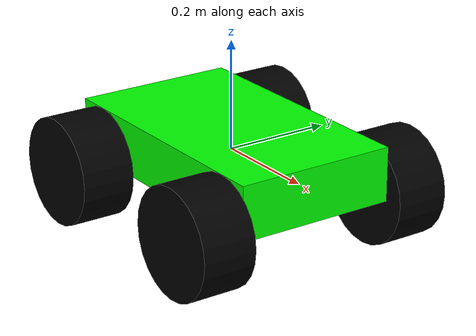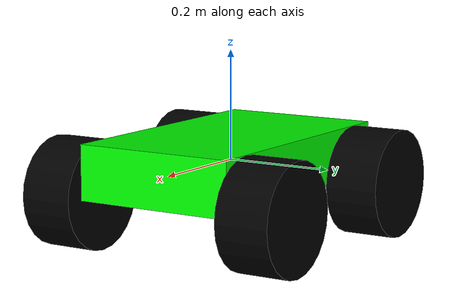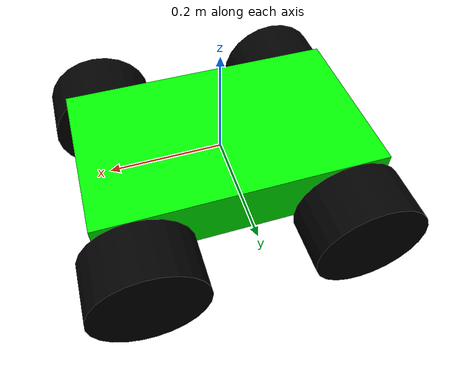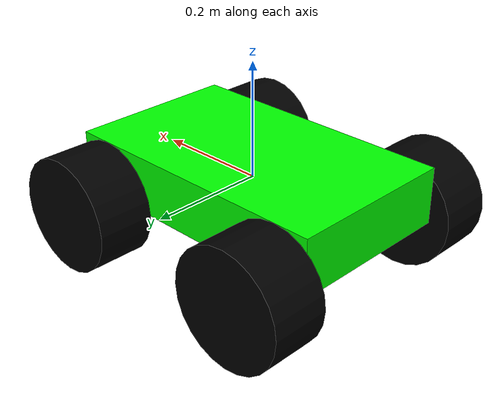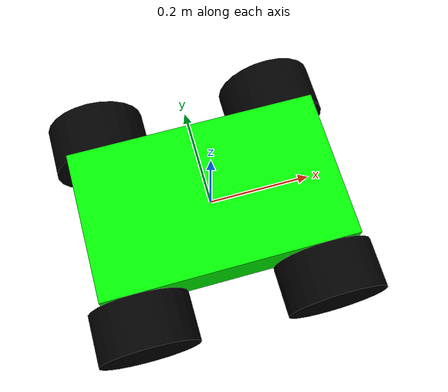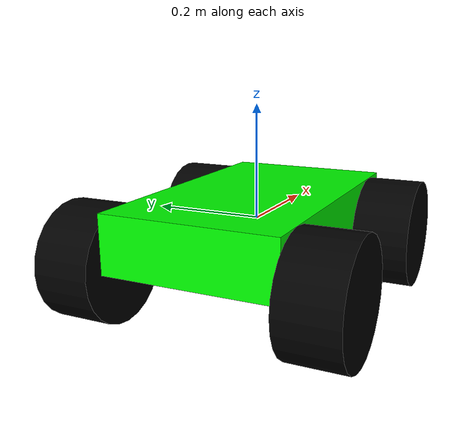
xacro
<?xml version="1.0" ?>
<robot xmlns:xacro="http://www.ros.org/wiki/xacro">

<xacro:include filename="$(find agri_bot)/urdf/materials.xacro" />
<xacro:include filename="$(find agri_bot)/urdf/properties.xacro" />

<xacro:property name="chassis_length"  value = "0.5"/>
<xacro:property name="chassis_width"   value = "0.3"/>
<xacro:property name="chassis_height"  value = "0.1"/>
<xacro:property name="chassis_mass"    value = "0.1"/>
<xacro:property name="wheel_radius"    value = "0.1"/>
<xacro:property name="wheel_thickness" value = "0.1"/>
<xacro:property name="wheel_mass"      value = "0.1"/>
<xacro:property name="wheel_offset_y"  value = "0.2"/>

<link name="base_link"/>

<joint name="base_footprint_joint" type="fixed">
    <parent link="base_link"/>
    <child link="base_footprint"/>
    <origin xyz="0 0 0" rpy="0 0 0"/>
</joint>

<link name="base_footprint">
</link>

<link name="chassis_link">
    <visual>
        <geometry>
            <box size="0.5 0.3 0.1"/>
        </geometry>
        <material name="green"/>
    </visual>
    <collision>
        <geometry>
            <box size="0.5 0.3 0.1"/>
        </geometry>
        <material name="green"/>
    </collision>
    <xacro:inertial_box mass="${chassis_mass}" x="${chassis_length}" y="${chassis_width}" z="${chassis_height}">
      <origin xyz="${chassis_length/2} 0 ${chassis_height/2}" rpy="0 0 0"/>
    </xacro:inertial_box>
</link>

<gazebo reference="chassis_link">
    <material>Gazebo/Blue</material>
</gazebo>

<link name="front_right_wheel">
    <visual>
        <geometry>
            <cylinder radius="${wheel_radius}" length="${wheel_thickness}"/>
        </geometry>
        <material name="black"/>
    </visual>
    <collision>
        <geometry>
            <cylinder radius="${wheel_radius}" length="${wheel_thickness}"/>
        </geometry>
        <material name="black"/>
    </collision>
    <xacro:inertial_cylinder mass="${wheel_mass}" length="${wheel_thickness}" radius="${wheel_radius}">
        <origin xyz="0 0 0" rpy="0 0 0"/>
    </xacro:inertial_cylinder>
</link>

<gazebo reference="front_right_wheel">
    <material>Gazebo/Black</material>
</gazebo>

<link name="front_left_wheel">
    <visual>
        <geometry>
            <cylinder radius="${wheel_radius}" length="${wheel_thickness}"/>
        </geometry>
        <material name="black"/>
    </visual>
    <collision>
        <geometry>
            <cylinder radius="${wheel_radius}" length="${wheel_thickness}"/>
        </geometry>
        <material name="black"/>
    </collision>
    <xacro:inertial_cylinder mass="${wheel_mass}" length="${wheel_thickness}" radius="${wheel_radius}">
        <origin xyz="0 0 0" rpy="0 0 0"/>
    </xacro:inertial_cylinder>
</link>

<gazebo reference="front_left_wheel">
    <material>Gazebo/Black</material>
</gazebo>

<link name="rear_right_wheel">
    <visual>
        <geometry>
            <cylinder radius="${wheel_radius}" length="${wheel_thickness}"/>
        </geometry>
        <material name="black"/>
    </visual>
    <collision>
        <geometry>
            <cylinder radius="${wheel_radius}" length="${wheel_thickness}"/>
        </geometry>
        <material name="black"/>
    </collision>
    <xacro:inertial_cylinder mass="${wheel_mass}" length="${wheel_thickness}" radius="${wheel_radius}">
        <origin xyz="0 0 0" rpy="0 0 0"/>
    </xacro:inertial_cylinder>
</link>

<gazebo reference="rear_right_wheel">
    <material>Gazebo/Black</material>
</gazebo>

<link name="rear_left_wheel">
    <visual>
        <geometry>
            <cylinder radius="${wheel_radius}" length="${wheel_thickness}"/>
        </geometry>
        <material name="black"/>
    </visual>
    <collision>
        <geometry>
            <cylinder radius="${wheel_radius}" length="${wheel_thickness}"/>
        </geometry>
        <material name="black"/>
    </collision>
    <xacro:inertial_cylinder mass="${wheel_mass}" length="${wheel_thickness}" radius="${wheel_radius}">
        <origin xyz="0 0 0" rpy="0 0 0"/>
    </xacro:inertial_cylinder>
</link>

<gazebo reference="rear_left_wheel">
    <material>Gazebo/Black</material>
</gazebo>

<joint name="base_to_chassis" type="fixed">
    <parent link="base_link"/>
    <child link="chassis_link"/>
</joint>

<joint name="fr_to_chassis" type="continuous">
    <parent link="chassis_link"/>
    <child link="front_right_wheel"/>
    <origin xyz = "${chassis_length/2 - chassis_length/8} -${wheel_offset_y} -${chassis_height/2}" rpy= "${pi/2} 0 0"/>
    <axis xyz="0 0 1"/>
</joint>

<joint name="fl_to_chassis" type="continuous">
    <parent link="chassis_link"/>
    <child link="front_left_wheel"/>
    <origin xyz = "${chassis_length/2 - chassis_length/8}  ${wheel_offset_y} -${chassis_height/2}" rpy= "-${pi/2} 0 0"/>
    <axis xyz="0 0 -1"/>
</joint>

<joint name="rr_to_chassis" type="continuous">
    <parent link="chassis_link"/>
    <child link="rear_right_wheel"/>
    <origin xyz = "-${chassis_length/2 - chassis_length/8} -${wheel_offset_y} -${chassis_height/2}" rpy= "${pi/2} 0 0"/>
    <axis xyz="0 0 1"/>
</joint>

<joint name="rl_to_chassis" type="continuous">
    <parent link="chassis_link"/>
    <child link="rear_left_wheel"/>
    <origin xyz = "-${chassis_length/2 - chassis_length/8} ${wheel_offset_y} -${chassis_height/2}" rpy= "-${pi/2} 0 0"/>
    <axis xyz="0 0 -1"/>
</joint>

</robot>

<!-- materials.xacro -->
<robot xmlns:xacro="http://www.ros.org/wiki/xacro" >

<material name="silver_default">
  <color rgba="0.700 0.700 0.700 1.000"/>
</material>

<material name="rubber_soft">
  <color rgba="0.15294117647058825 0.15294117647058825 0.15294117647058825 1.0"/>
</material>

<material name="plastic_glossy_grey">
  <color rgba="0.7019607843137254 0.7019607843137254 0.7019607843137254 1.0"/>
</material>

<material name="silver">
  <color rgba="0.700 0.700 0.700 1.000"/>
</material>

<material name="black">
  <color rgba="0 0 0 1"/>
</material>

<material name="white">
  <color rgba="1 1 1 1"/>
</material>

<material name="red">
  <color rgba="1 0 0 1"/>
</material>

<material name="green">
  <color rgba="0 1 0 1"/>
</material>

<material name="blue">
  <color rgba="0 0 1 1"/>
</material>

</robot>

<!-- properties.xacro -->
<robot name="ros" xmlns:xacro="http://www.ros.org/wiki/xacro" >

<xacro:property name="body_color" value="Gazebo/Grey" />

<gazebo reference="base_link">
  <material>${body_color}</material>
</gazebo>

<gazebo reference="left_wheel_1">
  <material>${body_color}</material>
  <mu1>0.2</mu1>
  <mu2>0.2</mu2>
</gazebo>

<gazebo reference="right_wheel_1">
  <material>${body_color}</material>
  <mu1>0.2</mu1>
  <mu2>0.2</mu2>
</gazebo>

<gazebo reference="laser_frame">
  <material>Gazebo/Black</material>
</gazebo>

</robot>
